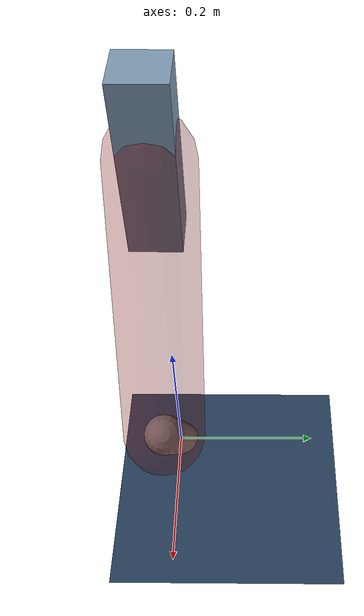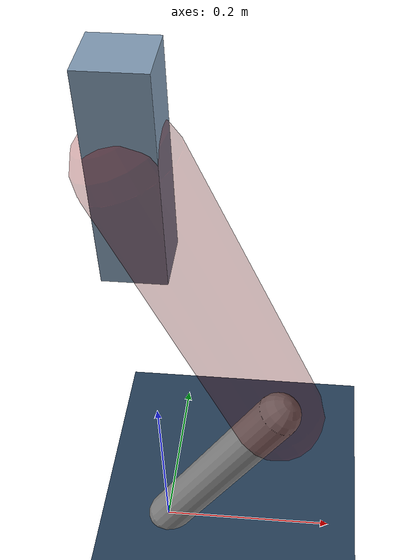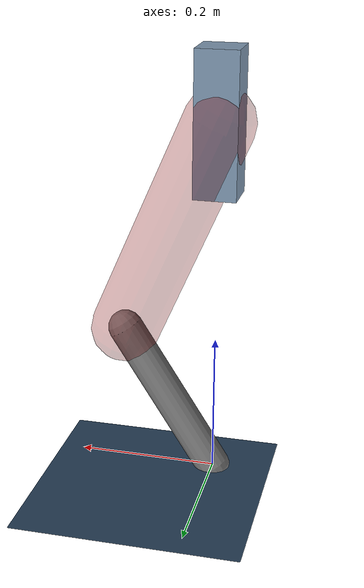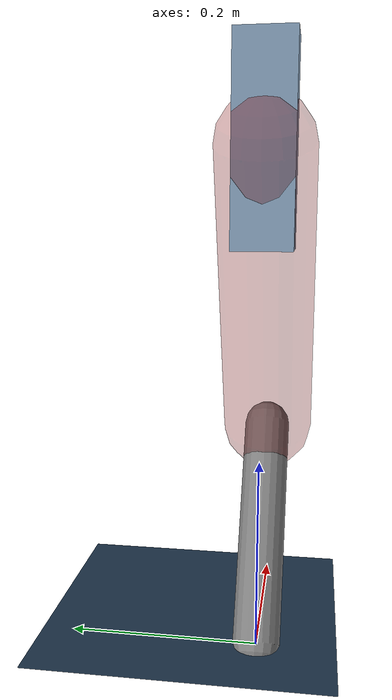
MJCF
<mujoco model="Hopper2D">
	<compiler inertiafromgeom="true" angle="radian" />
	<option timestep="0.001" integrator="implicit" cone="elliptic" solver="Newton" tolerance="1e-10" />

	<default>
		<geom contype="1" conaffinity="1" condim="3" friction="2 0.005 0.0001" solref="0.005 1" />
		<joint limited="true" damping="0.1" />
	</default>

	<asset>
		<texture name="skybox" type="skybox" builtin="gradient" rgb1=".4 .6 .8" rgb2="0 0 0" width="800" height="800" />
		<texture name="grid" type="2d" builtin="checker" rgb1=".1 .2 .3" rgb2=".2 .3 .4" width="300" height="300" mark="edge" markrgb=".2 .3 .4" />
		<material name="ground" texture="grid" texrepeat="1 1" texuniform="true" reflectance="0.1" />
		<material name="leg" rgba="0.5 0.6 0.7 1" />
	</asset>

	<worldbody>

		<geom name="floor" type="plane" size="5 5 0.25" material="ground" />

		<light directional="false" diffuse="0.8 0.8 0.8" specular="0.3 0.3 0.3" pos="0 0 2" dir="0 0 -1" />
		<light mode="targetbodycom" target="base" directional="false" diffuse="0.8 0.8 0.8" specular="0.3 0.3 0.3" pos="0 0 2" dir="0 0 -1" />

		<camera name="fixed" pos="0 -2 1" xyaxes="1 0 0 0 0 1" />
		<camera name="tracking" mode="trackcom" pos="0 -3 1" />

		<body name="root" pos="0 0 0.5142929931013221">
			<joint name="slide_x" type="slide" axis="1 0 0" range="-100 100" />
			<joint name="slide_z" type="slide" axis="0 0 1" range="0 10" />

			<body name="base" pos="0 0 0">
				<geom name="torso" type="box" size="0.03 0.03 0.1" mass="2.998" material="leg" />

				<body name="link1" pos="0 0 0" euler="0 1.1632942486206634 0">
					<joint type="hinge" axis="0 -1 0" pos="0 0 0" name="hinge1" limited="true" range="-3.14 3.14" stiffness="0" damping="0.1" />
					<geom name="thigh" type="capsule" fromto="0 0 0 0.33403042983601317 0 0" size="0.05" rgba="0.5 0 0 0.3" mass="1.0819852035408368" />

					<body name="link2" pos="0.33403042983601317 0 0" euler="0 0.9751334640466118 0">
						<joint type="hinge" axis="0 -1 0" pos="0 0 0" name="hinge2" limited="true" range="-3.14 3.14" stiffness="0" damping="0.1" />
						<geom name="shank" type="capsule" fromto="0 0 0 0.2462296116255798 0 0" size="0.025" mass="0.4394066504630218" />

					</body>
				</body>
			</body>
		</body>
	</worldbody>

	<actuator>
		<motor name="torque1" joint="hinge1" ctrlrange="-142.08978766246832 142.08978766246832" ctrllimited="true" gear="1" />
		<motor name="torque2" joint="hinge2" ctrlrange="-94.56874116093087 94.56874116093087" ctrllimited="true" gear="1" />
	</actuator>
</mujoco>
